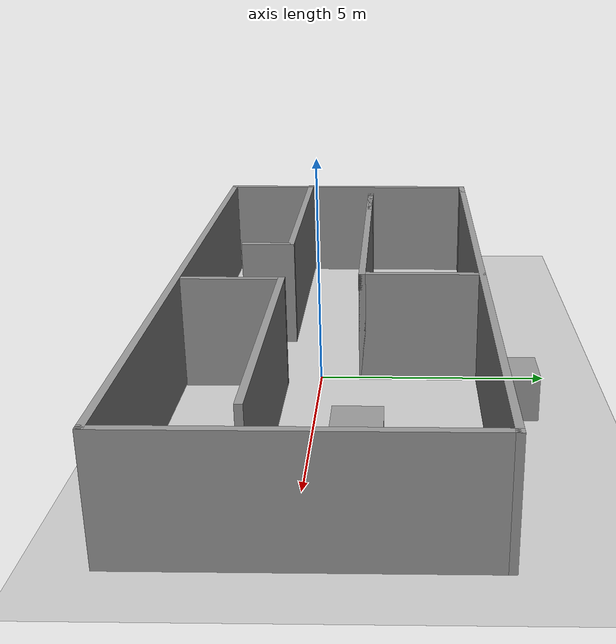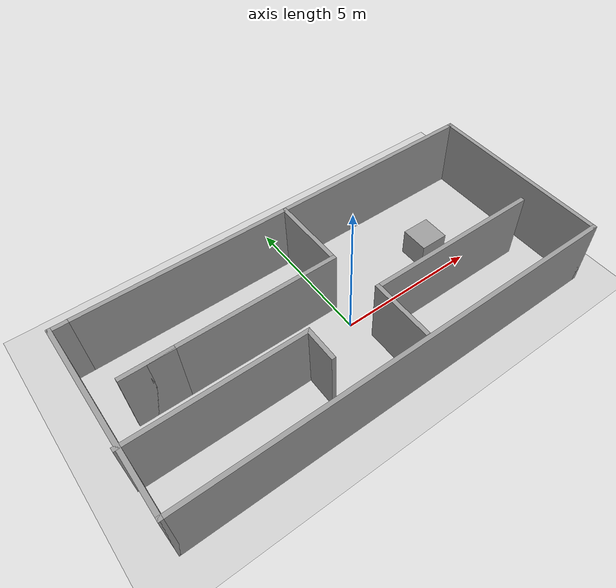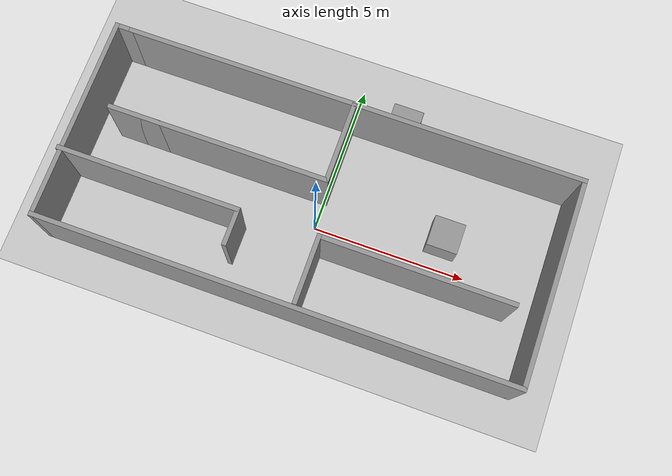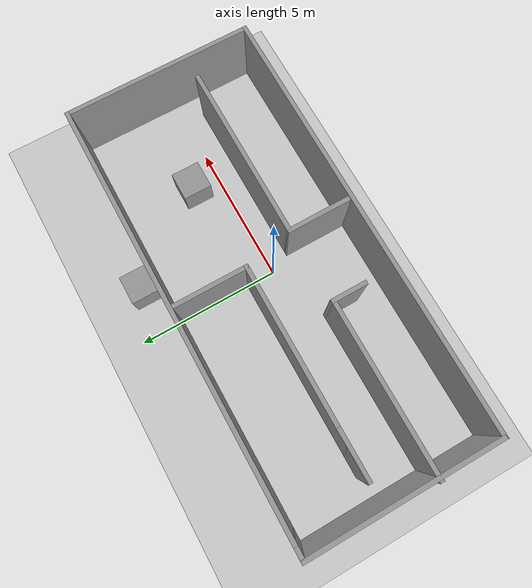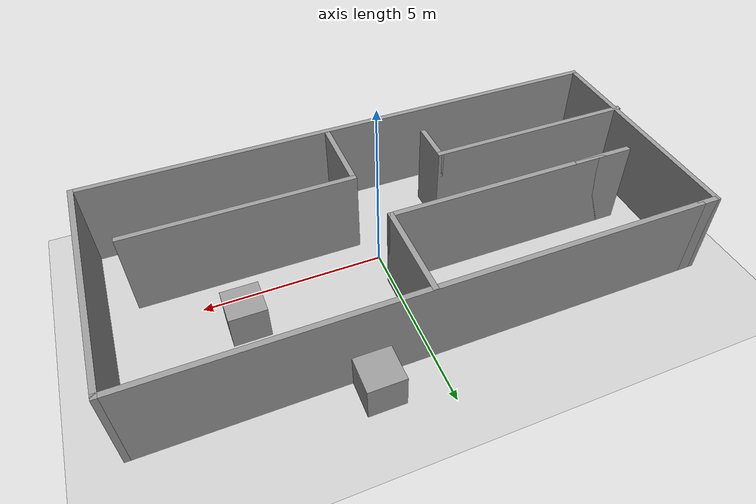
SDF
<sdf version="1.7">
 <world name="default">
  <light name="sun" type="directional">
   <pose>0 0 10 0 -0 0</pose>
   <diffuse>0.8 0.8 0.8 1</diffuse>
   <specular>0.2 0.2 0.2 1</specular>
   <attenuation>
    <range>1000</range>
    <constant>0.9</constant>
    <linear>0.01</linear>
    <quadratic>0.001</quadratic>
   </attenuation>
   <direction>-0.5 0.1 -0.9</direction>
   <spot><inner_angle>0</inner_angle><outer_angle>0</outer_angle><falloff>0</falloff></spot>
  </light>
  <model name="ground_plane">
   <static>1</static>
   <link name="link">
    <collision name="collision">
     <geometry><plane><normal>0 0 1</normal><size>100 100</size></plane></geometry>
     <surface>
      <contact><collide_bitmask>65535</collide_bitmask></contact>
      <friction><ode><mu>100</mu><mu2>50</mu2></ode></friction>
     </surface>
    </collision>
    <visual name="visual">
     <cast_shadows>0</cast_shadows>
     <geometry><plane><normal>0 0 1</normal><size>100 100</size></plane></geometry>
     <material>
      <script><uri>file://media/materials/scripts/gazebo.material</uri><name>Gazebo/Grey</name></script>
     </material>
    </visual>
   </link>
  </model>
  <gravity>0 0 -9.8</gravity>
  <magnetic_field>6e-06 2.3e-05 -4.2e-05</magnetic_field>
  <atmosphere type="adiabatic"/>
  <physics type="ode">
   <max_step_size>0.001</max_step_size>
   <real_time_factor>1</real_time_factor>
   <real_time_update_rate>1000</real_time_update_rate>
  </physics>
  <scene><ambient>0.4 0.4 0.4 1</ambient><background>0.7 0.7 0.7 1</background><shadows>1</shadows></scene>
  <audio><device>default</device></audio>
  <spherical_coordinates>
   <surface_model>EARTH_WGS84</surface_model>
   <latitude_deg>0</latitude_deg>
   <longitude_deg>0</longitude_deg>
   <elevation>0</elevation>
   <heading_deg>0</heading_deg>
  </spherical_coordinates>
  <model name="room">
   <pose>-0.212073 0.25159 0 0 -0 0</pose>
   <link name="Wall_10">
    <collision name="Wall_10_Collision">
     <geometry><box><size>2.75 0.15 2.5</size></box></geometry>
     <pose>0 0 1.25 0 -0 0</pose>
    </collision>
    <visual name="Wall_10_Visual">
     <pose>0 0 1.25 0 -0 0</pose>
     <geometry><box><size>2.75 0.15 2.5</size></box></geometry>
     <material>
      <script><uri>file://media/materials/scripts/gazebo.material</uri><name>Gazebo/Grey</name></script>
      <ambient>1 1 1 1</ambient>
     </material>
     <meta><layer>0</layer></meta>
    </visual>
    <pose>0.228345 1.98199 0 0 -0 1.5708</pose>
   </link>
   <link name="Wall_12">
    <collision name="Wall_12_Collision">
     <geometry><box><size>6 0.15 2.5</size></box></geometry>
     <pose>0 0 1.25 0 -0 0</pose>
    </collision>
    <visual name="Wall_12_Visual">
     <pose>0 0 1.25 0 -0 0</pose>
     <geometry><box><size>6 0.15 2.5</size></box></geometry>
     <material>
      <script><uri>file://media/materials/scripts/gazebo.material</uri><name>Gazebo/Grey</name></script>
      <ambient>1 1 1 1</ambient>
     </material>
     <meta><layer>0</layer></meta>
    </visual>
    <pose>-4.89391 -1.08694 0 0 -0 0</pose>
   </link>
   <link name="Wall_13">
    <collision name="Wall_13_Collision">
     <geometry><box><size>1.25 0.15 2.5</size></box></geometry>
     <pose>0 0 1.25 0 -0 0</pose>
    </collision>
    <visual name="Wall_13_Visual">
     <pose>0 0 1.25 0 -0 0</pose>
     <geometry><box><size>1.25 0.15 2.5</size></box></geometry>
     <material>
      <script><uri>file://media/materials/scripts/gazebo.material</uri><name>Gazebo/Grey</name></script>
      <ambient>1 1 1 1</ambient>
     </material>
     <meta><layer>0</layer></meta>
    </visual>
    <pose>-1.96891 -1.63694 0 0 -0 -1.5708</pose>
   </link>
   <link name="Wall_15">
    <collision name="Wall_15_Collision">
     <geometry><box><size>2.25 0.15 2.5</size></box></geometry>
     <pose>0 0 1.25 0 -0 0</pose>
    </collision>
    <visual name="Wall_15_Visual">
     <pose>0 0 1.25 0 -0 0</pose>
     <geometry><box><size>2.25 0.15 2.5</size></box></geometry>
     <material>
      <script><uri>file://media/materials/scripts/gazebo.material</uri><name>Gazebo/Grey</name></script>
      <ambient>1 1 1 1</ambient>
     </material>
     <meta><layer>0</layer></meta>
    </visual>
    <pose>0.601181 -2.08889 0 0 -0 1.5708</pose>
   </link>
   <link name="Wall_16">
    <collision name="Wall_16_Collision">
     <geometry><box><size>6.25 0.15 2.5</size></box></geometry>
     <pose>0 0 1.25 0 -0 0</pose>
    </collision>
    <visual name="Wall_16_Visual">
     <pose>0 0 1.25 0 -0 0</pose>
     <geometry><box><size>6.25 0.15 2.5</size></box></geometry>
     <material>
      <script><uri>file://media/materials/scripts/gazebo.material</uri><name>Gazebo/Grey</name></script>
      <ambient>1 1 1 1</ambient>
     </material>
     <meta><layer>0</layer></meta>
    </visual>
    <pose>3.65118 -1.03889 0 0 -0 0</pose>
   </link>
   <link name="Wall_2">
    <collision name="Wall_2_Collision">
     <geometry><box><size>6.75 0.15 2.5</size></box></geometry>
     <pose>0 0 1.25 0 -0 0</pose>
    </collision>
    <visual name="Wall_2_Visual">
     <pose>0 0 1.25 0 -0 0</pose>
     <geometry><box><size>6.75 0.15 2.5</size></box></geometry>
     <material>
      <script><uri>file://media/materials/scripts/gazebo.material</uri><name>Gazebo/Grey</name></script>
      <ambient>1 1 1 1</ambient>
     </material>
     <meta><layer>0</layer></meta>
    </visual>
    <pose>-7.74815 -0 0 0 -0 -1.5708</pose>
   </link>
   <link name="Wall_3">
    <collision name="Wall_3_Collision">
     <geometry><box><size>15.5 0.15 2.5</size></box></geometry>
     <pose>0 0 1.25 0 -0 0</pose>
    </collision>
    <visual name="Wall_3_Visual">
     <pose>0 0 1.25 0 -0 0</pose>
     <geometry><box><size>15.5 0.15 2.5</size></box></geometry>
     <material>
      <script><uri>file://media/materials/scripts/gazebo.material</uri><name>Gazebo/Grey</name></script>
      <ambient>1 1 1 1</ambient>
     </material>
     <meta><layer>0</layer></meta>
    </visual>
    <pose>-0.073152 -3.3 0 0 -0 0</pose>
   </link>
   <link name="Wall_4">
    <collision name="Wall_4_Collision">
     <geometry><box><size>6.75 0.15 2.5</size></box></geometry>
     <pose>0 0 1.25 0 -0 0</pose>
    </collision>
    <visual name="Wall_4_Visual">
     <pose>0 0 1.25 0 -0 0</pose>
     <geometry><box><size>6.75 0.15 2.5</size></box></geometry>
     <material>
      <script><uri>file://media/materials/scripts/gazebo.material</uri><name>Gazebo/Grey</name></script>
      <ambient>1 1 1 1</ambient>
     </material>
     <meta><layer>0</layer></meta>
    </visual>
    <pose>7.60185 -0 0 0 -0 1.5708</pose>
   </link>
   <link name="Wall_5">
    <collision name="Wall_5_Collision">
     <geometry><box><size>15 0.15 2.5</size></box></geometry>
     <pose>0 0 1.25 0 -0 0</pose>
    </collision>
    <visual name="Wall_5_Visual">
     <pose>0 0 1.25 0 -0 0</pose>
     <geometry><box><size>15 0.15 2.5</size></box></geometry>
     <material>
      <script><uri>file://media/materials/scripts/gazebo.material</uri><name>Gazebo/Grey</name></script>
      <ambient>1 1 1 1</ambient>
     </material>
     <meta><layer>0</layer></meta>
    </visual>
    <pose>0.176848 3.3 0 0 -0 3.14159</pose>
   </link>
   <link name="Wall_6">
    <collision name="Wall_6_Collision">
     <geometry><box><size>0.65 0.15 2.5</size></box></geometry>
     <pose>0 0 1.25 0 -0 0</pose>
    </collision>
    <visual name="Wall_6_Visual">
     <pose>0 0 1.25 0 -0 0</pose>
     <geometry><box><size>0.65 0.15 2.5</size></box></geometry>
     <material>
      <script><uri>file://media/materials/scripts/gazebo.material</uri><name>Gazebo/Grey</name></script>
      <ambient>1 1 1 1</ambient>
     </material>
     <meta><layer>0</layer></meta>
    </visual>
    <pose>-7.49815 3.3 0 0 -0 -3.14159</pose>
   </link>
   <link name="Wall_8">
    <collision name="Wall_8_Collision">
     <geometry><box><size>1.75 0.15 2.5</size></box></geometry>
     <pose>0 0 1.25 0 -0 0</pose>
    </collision>
    <visual name="Wall_8_Visual">
     <pose>0 0 1.25 0 -0 0</pose>
     <geometry><box><size>1.75 0.15 2.5</size></box></geometry>
     <material>
      <script><uri>file://media/materials/scripts/gazebo.material</uri><name>Gazebo/Grey</name></script>
      <ambient>1 1 1 1</ambient>
     </material>
     <meta><layer>0</layer></meta>
    </visual>
    <pose>-6.07165 0.681989 0 0 -0 3.14159</pose>
   </link>
   <link name="Wall_9">
    <collision name="Wall_9_Collision">
     <geometry><box><size>7.25 0.15 2.5</size></box></geometry>
     <pose>0 0 1.25 0 -0 0</pose>
    </collision>
    <visual name="Wall_9_Visual">
     <pose>0 0 1.25 0 -0 0</pose>
     <geometry><box><size>7.25 0.15 2.5</size></box></geometry>
     <material>
      <script><uri>file://media/materials/scripts/gazebo.material</uri><name>Gazebo/Grey</name></script>
      <ambient>1 1 1 1</ambient>
     </material>
     <meta><layer>0</layer></meta>
    </visual>
    <pose>-3.32165 0.681989 0 0 -0 0</pose>
   </link>
   <static>1</static>
  </model>
  <model name="unit_box">
   <pose>1.61302 4.12659 0.5 0 -0 1e-06</pose>
   <link name="link">
    <inertial>
     <mass>1</mass>
     <inertia>
      <ixx>0.166667</ixx>
      <ixy>0</ixy>
      <ixz>0</ixz>
      <iyy>0.166667</iyy>
      <iyz>0</iyz>
      <izz>0.166667</izz>
     </inertia>
    </inertial>
    <collision name="collision"><geometry><box><size>1 1 1</size></box></geometry></collision>
    <visual name="visual">
     <geometry><box><size>1 1 1</size></box></geometry>
     <material>
      <script><name>Gazebo/Grey</name><uri>file://media/materials/scripts/gazebo.material</uri></script>
     </material>
    </visual>
   </link>
  </model>
  <model name="unit_box_0">
   <pose>4.01755 0.969256 0.499995 0 -1e-05 0</pose>
   <link name="link">
    <inertial>
     <mass>1</mass>
     <inertia>
      <ixx>0.166667</ixx>
      <ixy>0</ixy>
      <ixz>0</ixz>
      <iyy>0.166667</iyy>
      <iyz>0</iyz>
      <izz>0.166667</izz>
     </inertia>
    </inertial>
    <collision name="collision"><geometry><box><size>1 1 1</size></box></geometry></collision>
    <visual name="visual">
     <geometry><box><size>1 1 1</size></box></geometry>
     <material>
      <script><name>Gazebo/Grey</name><uri>file://media/materials/scripts/gazebo.material</uri></script>
     </material>
    </visual>
   </link>
  </model>
 </world>
</sdf>
